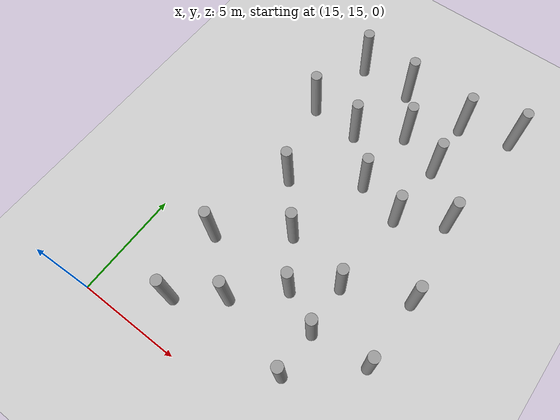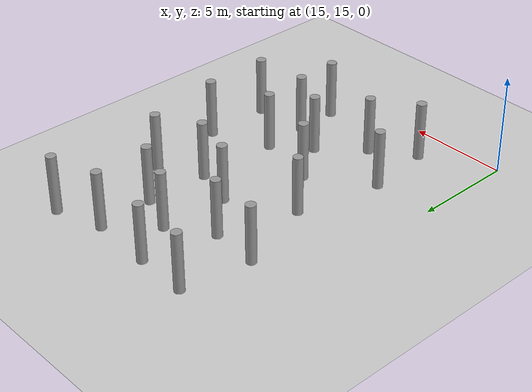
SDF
<sdf version="1.6">
 <world name="default">
  <model name="ground_plane">
   <static>1</static>
   <link name="link">
    <collision name="collision">
     <geometry><plane><normal>0 0 1</normal><size>100 100</size></plane></geometry>
     <surface><friction><ode><mu>100</mu><mu2>50</mu2></ode></friction></surface>
    </collision>
    <visual name="visual">
     <cast_shadows>0</cast_shadows>
     <geometry><plane><normal>0 0 1</normal><size>100 100</size></plane></geometry>
     <material>
      <script><uri>file://media/materials/scripts/gazebo.material</uri><name>Gazebo/Grey</name></script>
     </material>
    </visual>
   </link>
  </model>
  <model name="LjjForest_2">
   <link name="link_0_clone_0">
    <inertial>
     <mass>1</mass>
     <inertia><ixx>0.145833</ixx><ixy>0</ixy><ixz>0</ixz><iyy>0.145833</iyy><iyz>0</iyz><izz>0.125</izz></inertia>
    </inertial>
    <pose>-0.25253 2.5682 0 0 -0 0</pose>
    <visual name="visual">
     <geometry><cylinder><radius>0.25</radius><length>3</length></cylinder></geometry>
     <material>
      <lighting>1</lighting>
      <script><uri>file://media/materials/scripts/gazebo.material</uri><name>Gazebo/Grey</name></script>
      <shader type="vertex"><normal_map>__default__</normal_map></shader>
      <ambient>0.3 0.3 0.3 1</ambient>
      <diffuse>0.7 0.7 0.7 1</diffuse>
      <specular>0.01 0.01 0.01 1</specular>
      <emissive>0 0 0 1</emissive>
     </material>
    </visual>
    <collision name="collision">
     <geometry><cylinder><radius>0.25</radius><length>3</length></cylinder></geometry>
     <surface>
      <friction>
       <ode><mu>1</mu><mu2>1</mu2><fdir1>0 0 0</fdir1><slip1>0</slip1><slip2>0</slip2></ode>
       <torsional>
        <coefficient>1</coefficient>
        <patch_radius>0</patch_radius>
        <surface_radius>0</surface_radius>
        <use_patch_radius>1</use_patch_radius>
        <ode><slip>0</slip></ode>
       </torsional>
      </friction>
      <bounce><restitution_coefficient>0</restitution_coefficient><threshold>1e+06</threshold></bounce>
      <contact>
       <collide_without_contact>0</collide_without_contact>
       <collide_without_contact_bitmask>1</collide_without_contact_bitmask>
       <collide_bitmask>1</collide_bitmask>
       <ode>
        <soft_cfm>0</soft_cfm>
        <soft_erp>0.2</soft_erp>
        <kp>1e+13</kp>
        <kd>1</kd>
        <max_vel>0.01</max_vel>
        <min_depth>0</min_depth>
       </ode>
       <bullet>
        <split_impulse>1</split_impulse>
        <split_impulse_penetration_threshold>-0.01</split_impulse_penetration_threshold>
        <soft_cfm>0</soft_cfm>
        <soft_erp>0.2</soft_erp>
        <kp>1e+13</kp>
        <kd>1</kd>
       </bullet>
      </contact>
     </surface>
    </collision>
   </link>
   <link name="link_0_clone_1">
    <inertial>
     <mass>1</mass>
     <inertia><ixx>0.145833</ixx><ixy>0</ixy><ixz>0</ixz><iyy>0.145833</iyy><iyz>0</iyz><izz>0.125</izz></inertia>
    </inertial>
    <pose>-1.2394 -1.64814 0 0 -0 0</pose>
    <visual name="visual">
     <geometry><cylinder><radius>0.25</radius><length>3</length></cylinder></geometry>
     <material>
      <lighting>1</lighting>
      <script><uri>file://media/materials/scripts/gazebo.material</uri><name>Gazebo/Grey</name></script>
      <shader type="vertex"><normal_map>__default__</normal_map></shader>
      <ambient>0.3 0.3 0.3 1</ambient>
      <diffuse>0.7 0.7 0.7 1</diffuse>
      <specular>0.01 0.01 0.01 1</specular>
      <emissive>0 0 0 1</emissive>
     </material>
    </visual>
    <collision name="collision">
     <geometry><cylinder><radius>0.25</radius><length>3</length></cylinder></geometry>
     <surface>
      <friction>
       <ode><mu>1</mu><mu2>1</mu2><fdir1>0 0 0</fdir1><slip1>0</slip1><slip2>0</slip2></ode>
       <torsional>
        <coefficient>1</coefficient>
        <patch_radius>0</patch_radius>
        <surface_radius>0</surface_radius>
        <use_patch_radius>1</use_patch_radius>
        <ode><slip>0</slip></ode>
       </torsional>
      </friction>
      <bounce><restitution_coefficient>0</restitution_coefficient><threshold>1e+06</threshold></bounce>
      <contact>
       <collide_without_contact>0</collide_without_contact>
       <collide_without_contact_bitmask>1</collide_without_contact_bitmask>
       <collide_bitmask>1</collide_bitmask>
       <ode>
        <soft_cfm>0</soft_cfm>
        <soft_erp>0.2</soft_erp>
        <kp>1e+13</kp>
        <kd>1</kd>
        <max_vel>0.01</max_vel>
        <min_depth>0</min_depth>
       </ode>
       <bullet>
        <split_impulse>1</split_impulse>
        <split_impulse_penetration_threshold>-0.01</split_impulse_penetration_threshold>
        <soft_cfm>0</soft_cfm>
        <soft_erp>0.2</soft_erp>
        <kp>1e+13</kp>
        <kd>1</kd>
       </bullet>
      </contact>
     </surface>
    </collision>
   </link>
   <link name="link_0_clone_10">
    <inertial>
     <mass>1</mass>
     <inertia><ixx>0.145833</ixx><ixy>0</ixy><ixz>0</ixz><iyy>0.145833</iyy><iyz>0</iyz><izz>0.125</izz></inertia>
    </inertial>
    <pose>4.92442 -4.7051 0 0 -0 0</pose>
    <visual name="visual">
     <geometry><cylinder><radius>0.25</radius><length>3</length></cylinder></geometry>
     <material>
      <lighting>1</lighting>
      <script><uri>file://media/materials/scripts/gazebo.material</uri><name>Gazebo/Grey</name></script>
      <shader type="vertex"><normal_map>__default__</normal_map></shader>
      <ambient>0.3 0.3 0.3 1</ambient>
      <diffuse>0.7 0.7 0.7 1</diffuse>
      <specular>0.01 0.01 0.01 1</specular>
      <emissive>0 0 0 1</emissive>
     </material>
    </visual>
    <collision name="collision">
     <geometry><cylinder><radius>0.25</radius><length>3</length></cylinder></geometry>
     <surface>
      <friction>
       <ode><mu>1</mu><mu2>1</mu2><fdir1>0 0 0</fdir1><slip1>0</slip1><slip2>0</slip2></ode>
       <torsional>
        <coefficient>1</coefficient>
        <patch_radius>0</patch_radius>
        <surface_radius>0</surface_radius>
        <use_patch_radius>1</use_patch_radius>
        <ode><slip>0</slip></ode>
       </torsional>
      </friction>
      <bounce><restitution_coefficient>0</restitution_coefficient><threshold>1e+06</threshold></bounce>
      <contact>
       <collide_without_contact>0</collide_without_contact>
       <collide_without_contact_bitmask>1</collide_without_contact_bitmask>
       <collide_bitmask>1</collide_bitmask>
       <ode>
        <soft_cfm>0</soft_cfm>
        <soft_erp>0.2</soft_erp>
        <kp>1e+13</kp>
        <kd>1</kd>
        <max_vel>0.01</max_vel>
        <min_depth>0</min_depth>
       </ode>
       <bullet>
        <split_impulse>1</split_impulse>
        <split_impulse_penetration_threshold>-0.01</split_impulse_penetration_threshold>
        <soft_cfm>0</soft_cfm>
        <soft_erp>0.2</soft_erp>
        <kp>1e+13</kp>
        <kd>1</kd>
       </bullet>
      </contact>
     </surface>
    </collision>
   </link>
   <link name="link_0_clone_14">
    <inertial>
     <mass>1</mass>
     <inertia><ixx>0.145833</ixx><ixy>0</ixy><ixz>0</ixz><iyy>0.145833</iyy><iyz>0</iyz><izz>0.125</izz></inertia>
    </inertial>
    <pose>-0.840028 -4.93267 0 0 -0 0</pose>
    <visual name="visual">
     <geometry><cylinder><radius>0.25</radius><length>3</length></cylinder></geometry>
     <material>
      <lighting>1</lighting>
      <script><uri>file://media/materials/scripts/gazebo.material</uri><name>Gazebo/Grey</name></script>
      <shader type="vertex"><normal_map>__default__</normal_map></shader>
      <ambient>0.3 0.3 0.3 1</ambient>
      <diffuse>0.7 0.7 0.7 1</diffuse>
      <specular>0.01 0.01 0.01 1</specular>
      <emissive>0 0 0 1</emissive>
     </material>
    </visual>
    <collision name="collision">
     <geometry><cylinder><radius>0.25</radius><length>3</length></cylinder></geometry>
     <surface>
      <friction>
       <ode><mu>1</mu><mu2>1</mu2><fdir1>0 0 0</fdir1><slip1>0</slip1><slip2>0</slip2></ode>
       <torsional>
        <coefficient>1</coefficient>
        <patch_radius>0</patch_radius>
        <surface_radius>0</surface_radius>
        <use_patch_radius>1</use_patch_radius>
        <ode><slip>0</slip></ode>
       </torsional>
      </friction>
      <bounce><restitution_coefficient>0</restitution_coefficient><threshold>1e+06</threshold></bounce>
      <contact>
       <collide_without_contact>0</collide_without_contact>
       <collide_without_contact_bitmask>1</collide_without_contact_bitmask>
       <collide_bitmask>1</collide_bitmask>
       <ode>
        <soft_cfm>0</soft_cfm>
        <soft_erp>0.2</soft_erp>
        <kp>1e+13</kp>
        <kd>1</kd>
        <max_vel>0.01</max_vel>
        <min_depth>0</min_depth>
       </ode>
       <bullet>
        <split_impulse>1</split_impulse>
        <split_impulse_penetration_threshold>-0.01</split_impulse_penetration_threshold>
        <soft_cfm>0</soft_cfm>
        <soft_erp>0.2</soft_erp>
        <kp>1e+13</kp>
        <kd>1</kd>
       </bullet>
      </contact>
     </surface>
    </collision>
   </link>
   <link name="link_0_clone_2">
    <inertial>
     <mass>1</mass>
     <inertia><ixx>0.145833</ixx><ixy>0</ixy><ixz>0</ixz><iyy>0.145833</iyy><iyz>0</iyz><izz>0.125</izz></inertia>
    </inertial>
    <pose>1.64727 0.418921 0 0 -0 0</pose>
    <visual name="visual">
     <geometry><cylinder><radius>0.25</radius><length>3</length></cylinder></geometry>
     <material>
      <lighting>1</lighting>
      <script><uri>file://media/materials/scripts/gazebo.material</uri><name>Gazebo/Grey</name></script>
      <shader type="vertex"><normal_map>__default__</normal_map></shader>
      <ambient>0.3 0.3 0.3 1</ambient>
      <diffuse>0.7 0.7 0.7 1</diffuse>
      <specular>0.01 0.01 0.01 1</specular>
      <emissive>0 0 0 1</emissive>
     </material>
    </visual>
    <collision name="collision">
     <geometry><cylinder><radius>0.25</radius><length>3</length></cylinder></geometry>
     <surface>
      <friction>
       <ode><mu>1</mu><mu2>1</mu2><fdir1>0 0 0</fdir1><slip1>0</slip1><slip2>0</slip2></ode>
       <torsional>
        <coefficient>1</coefficient>
        <patch_radius>0</patch_radius>
        <surface_radius>0</surface_radius>
        <use_patch_radius>1</use_patch_radius>
        <ode><slip>0</slip></ode>
       </torsional>
      </friction>
      <bounce><restitution_coefficient>0</restitution_coefficient><threshold>1e+06</threshold></bounce>
      <contact>
       <collide_without_contact>0</collide_without_contact>
       <collide_without_contact_bitmask>1</collide_without_contact_bitmask>
       <collide_bitmask>1</collide_bitmask>
       <ode>
        <soft_cfm>0</soft_cfm>
        <soft_erp>0.2</soft_erp>
        <kp>1e+13</kp>
        <kd>1</kd>
        <max_vel>0.01</max_vel>
        <min_depth>0</min_depth>
       </ode>
       <bullet>
        <split_impulse>1</split_impulse>
        <split_impulse_penetration_threshold>-0.01</split_impulse_penetration_threshold>
        <soft_cfm>0</soft_cfm>
        <soft_erp>0.2</soft_erp>
        <kp>1e+13</kp>
        <kd>1</kd>
       </bullet>
      </contact>
     </surface>
    </collision>
   </link>
   <link name="link_0_clone_24">
    <inertial>
     <mass>1</mass>
     <inertia><ixx>0.145833</ixx><ixy>0</ixy><ixz>0</ixz><iyy>0.145833</iyy><iyz>0</iyz><izz>0.125</izz></inertia>
    </inertial>
    <pose>2.92874 7.75131 0 0 -0 0</pose>
    <visual name="visual">
     <geometry><cylinder><radius>0.25</radius><length>3</length></cylinder></geometry>
     <material>
      <lighting>1</lighting>
      <script><uri>file://media/materials/scripts/gazebo.material</uri><name>Gazebo/Grey</name></script>
      <shader type="vertex"><normal_map>__default__</normal_map></shader>
      <ambient>0.3 0.3 0.3 1</ambient>
      <diffuse>0.7 0.7 0.7 1</diffuse>
      <specular>0.01 0.01 0.01 1</specular>
      <emissive>0 0 0 1</emissive>
     </material>
    </visual>
    <collision name="collision">
     <geometry><cylinder><radius>0.25</radius><length>3</length></cylinder></geometry>
     <surface>
      <friction>
       <ode><mu>1</mu><mu2>1</mu2><fdir1>0 0 0</fdir1><slip1>0</slip1><slip2>0</slip2></ode>
       <torsional>
        <coefficient>1</coefficient>
        <patch_radius>0</patch_radius>
        <surface_radius>0</surface_radius>
        <use_patch_radius>1</use_patch_radius>
        <ode><slip>0</slip></ode>
       </torsional>
      </friction>
      <bounce><restitution_coefficient>0</restitution_coefficient><threshold>1e+06</threshold></bounce>
      <contact>
       <collide_without_contact>0</collide_without_contact>
       <collide_without_contact_bitmask>1</collide_without_contact_bitmask>
       <collide_bitmask>1</collide_bitmask>
       <ode>
        <soft_cfm>0</soft_cfm>
        <soft_erp>0.2</soft_erp>
        <kp>1e+13</kp>
        <kd>1</kd>
        <max_vel>0.01</max_vel>
        <min_depth>0</min_depth>
       </ode>
       <bullet>
        <split_impulse>1</split_impulse>
        <split_impulse_penetration_threshold>-0.01</split_impulse_penetration_threshold>
        <soft_cfm>0</soft_cfm>
        <soft_erp>0.2</soft_erp>
        <kp>1e+13</kp>
        <kd>1</kd>
       </bullet>
      </contact>
     </surface>
    </collision>
   </link>
   <link name="link_0_clone_25">
    <inertial>
     <mass>1</mass>
     <inertia><ixx>0.145833</ixx><ixy>0</ixy><ixz>0</ixz><iyy>0.145833</iyy><iyz>0</iyz><izz>0.125</izz></inertia>
    </inertial>
    <pose>4.82479 9.76951 0 0 -0 0</pose>
    <visual name="visual">
     <geometry><cylinder><radius>0.25</radius><length>3</length></cylinder></geometry>
     <material>
      <lighting>1</lighting>
      <script><uri>file://media/materials/scripts/gazebo.material</uri><name>Gazebo/Grey</name></script>
      <shader type="vertex"><normal_map>__default__</normal_map></shader>
      <ambient>0.3 0.3 0.3 1</ambient>
      <diffuse>0.7 0.7 0.7 1</diffuse>
      <specular>0.01 0.01 0.01 1</specular>
      <emissive>0 0 0 1</emissive>
     </material>
    </visual>
    <collision name="collision">
     <geometry><cylinder><radius>0.25</radius><length>3</length></cylinder></geometry>
     <surface>
      <friction>
       <ode><mu>1</mu><mu2>1</mu2><fdir1>0 0 0</fdir1><slip1>0</slip1><slip2>0</slip2></ode>
       <torsional>
        <coefficient>1</coefficient>
        <patch_radius>0</patch_radius>
        <surface_radius>0</surface_radius>
        <use_patch_radius>1</use_patch_radius>
        <ode><slip>0</slip></ode>
       </torsional>
      </friction>
      <bounce><restitution_coefficient>0</restitution_coefficient><threshold>1e+06</threshold></bounce>
      <contact>
       <collide_without_contact>0</collide_without_contact>
       <collide_without_contact_bitmask>1</collide_without_contact_bitmask>
       <collide_bitmask>1</collide_bitmask>
       <ode>
        <soft_cfm>0</soft_cfm>
        <soft_erp>0.2</soft_erp>
        <kp>1e+13</kp>
        <kd>1</kd>
        <max_vel>0.01</max_vel>
        <min_depth>0</min_depth>
       </ode>
       <bullet>
        <split_impulse>1</split_impulse>
        <split_impulse_penetration_threshold>-0.01</split_impulse_penetration_threshold>
        <soft_cfm>0</soft_cfm>
        <soft_erp>0.2</soft_erp>
        <kp>1e+13</kp>
        <kd>1</kd>
       </bullet>
      </contact>
     </surface>
    </collision>
   </link>
   <link name="link_0_clone_26">
    <inertial>
     <mass>1</mass>
     <inertia><ixx>0.145833</ixx><ixy>0</ixy><ixz>0</ixz><iyy>0.145833</iyy><iyz>0</iyz><izz>0.125</izz></inertia>
    </inertial>
    <pose>1.66794 9.91533 0 0 -0 0</pose>
    <visual name="visual">
     <geometry><cylinder><radius>0.25</radius><length>3</length></cylinder></geometry>
     <material>
      <lighting>1</lighting>
      <script><uri>file://media/materials/scripts/gazebo.material</uri><name>Gazebo/Grey</name></script>
      <shader type="vertex"><normal_map>__default__</normal_map></shader>
      <ambient>0.3 0.3 0.3 1</ambient>
      <diffuse>0.7 0.7 0.7 1</diffuse>
      <specular>0.01 0.01 0.01 1</specular>
      <emissive>0 0 0 1</emissive>
     </material>
    </visual>
    <collision name="collision">
     <geometry><cylinder><radius>0.25</radius><length>3</length></cylinder></geometry>
     <surface>
      <friction>
       <ode><mu>1</mu><mu2>1</mu2><fdir1>0 0 0</fdir1><slip1>0</slip1><slip2>0</slip2></ode>
       <torsional>
        <coefficient>1</coefficient>
        <patch_radius>0</patch_radius>
        <surface_radius>0</surface_radius>
        <use_patch_radius>1</use_patch_radius>
        <ode><slip>0</slip></ode>
       </torsional>
      </friction>
      <bounce><restitution_coefficient>0</restitution_coefficient><threshold>1e+06</threshold></bounce>
      <contact>
       <collide_without_contact>0</collide_without_contact>
       <collide_without_contact_bitmask>1</collide_without_contact_bitmask>
       <collide_bitmask>1</collide_bitmask>
       <ode>
        <soft_cfm>0</soft_cfm>
        <soft_erp>0.2</soft_erp>
        <kp>1e+13</kp>
        <kd>1</kd>
        <max_vel>0.01</max_vel>
        <min_depth>0</min_depth>
       </ode>
       <bullet>
        <split_impulse>1</split_impulse>
        <split_impulse_penetration_threshold>-0.01</split_impulse_penetration_threshold>
        <soft_cfm>0</soft_cfm>
        <soft_erp>0.2</soft_erp>
        <kp>1e+13</kp>
        <kd>1</kd>
       </bullet>
      </contact>
     </surface>
    </collision>
   </link>
   <link name="link_0_clone_27">
    <inertial>
     <mass>1</mass>
     <inertia><ixx>0.145833</ixx><ixy>0</ixy><ixz>0</ixz><iyy>0.145833</iyy><iyz>0</iyz><izz>0.125</izz></inertia>
    </inertial>
    <pose>-0.975859 10.0087 0 0 -0 0</pose>
    <visual name="visual">
     <geometry><cylinder><radius>0.25</radius><length>3</length></cylinder></geometry>
     <material>
      <lighting>1</lighting>
      <script><uri>file://media/materials/scripts/gazebo.material</uri><name>Gazebo/Grey</name></script>
      <shader type="vertex"><normal_map>__default__</normal_map></shader>
      <ambient>0.3 0.3 0.3 1</ambient>
      <diffuse>0.7 0.7 0.7 1</diffuse>
      <specular>0.01 0.01 0.01 1</specular>
      <emissive>0 0 0 1</emissive>
     </material>
    </visual>
    <collision name="collision">
     <geometry><cylinder><radius>0.25</radius><length>3</length></cylinder></geometry>
     <surface>
      <friction>
       <ode><mu>1</mu><mu2>1</mu2><fdir1>0 0 0</fdir1><slip1>0</slip1><slip2>0</slip2></ode>
       <torsional>
        <coefficient>1</coefficient>
        <patch_radius>0</patch_radius>
        <surface_radius>0</surface_radius>
        <use_patch_radius>1</use_patch_radius>
        <ode><slip>0</slip></ode>
       </torsional>
      </friction>
      <bounce><restitution_coefficient>0</restitution_coefficient><threshold>1e+06</threshold></bounce>
      <contact>
       <collide_without_contact>0</collide_without_contact>
       <collide_without_contact_bitmask>1</collide_without_contact_bitmask>
       <collide_bitmask>1</collide_bitmask>
       <ode>
        <soft_cfm>0</soft_cfm>
        <soft_erp>0.2</soft_erp>
        <kp>1e+13</kp>
        <kd>1</kd>
        <max_vel>0.01</max_vel>
        <min_depth>0</min_depth>
       </ode>
       <bullet>
        <split_impulse>1</split_impulse>
        <split_impulse_penetration_threshold>-0.01</split_impulse_penetration_threshold>
        <soft_cfm>0</soft_cfm>
        <soft_erp>0.2</soft_erp>
        <kp>1e+13</kp>
        <kd>1</kd>
       </bullet>
      </contact>
     </surface>
    </collision>
   </link>
   <link name="link_0_clone_3">
    <inertial>
     <mass>1</mass>
     <inertia><ixx>0.145833</ixx><ixy>0</ixy><ixz>0</ixz><iyy>0.145833</iyy><iyz>0</iyz><izz>0.125</izz></inertia>
    </inertial>
    <pose>2.76214 4.38882 0 0 -0 0</pose>
    <visual name="visual">
     <geometry><cylinder><radius>0.25</radius><length>3</length></cylinder></geometry>
     <material>
      <lighting>1</lighting>
      <script><uri>file://media/materials/scripts/gazebo.material</uri><name>Gazebo/Grey</name></script>
      <shader type="vertex"><normal_map>__default__</normal_map></shader>
      <ambient>0.3 0.3 0.3 1</ambient>
      <diffuse>0.7 0.7 0.7 1</diffuse>
      <specular>0.01 0.01 0.01 1</specular>
      <emissive>0 0 0 1</emissive>
     </material>
    </visual>
    <collision name="collision">
     <geometry><cylinder><radius>0.25</radius><length>3</length></cylinder></geometry>
     <surface>
      <friction>
       <ode><mu>1</mu><mu2>1</mu2><fdir1>0 0 0</fdir1><slip1>0</slip1><slip2>0</slip2></ode>
       <torsional>
        <coefficient>1</coefficient>
        <patch_radius>0</patch_radius>
        <surface_radius>0</surface_radius>
        <use_patch_radius>1</use_patch_radius>
        <ode><slip>0</slip></ode>
       </torsional>
      </friction>
      <bounce><restitution_coefficient>0</restitution_coefficient><threshold>1e+06</threshold></bounce>
      <contact>
       <collide_without_contact>0</collide_without_contact>
       <collide_without_contact_bitmask>1</collide_without_contact_bitmask>
       <collide_bitmask>1</collide_bitmask>
       <ode>
        <soft_cfm>0</soft_cfm>
        <soft_erp>0.2</soft_erp>
        <kp>1e+13</kp>
        <kd>1</kd>
        <max_vel>0.01</max_vel>
        <min_depth>0</min_depth>
       </ode>
       <bullet>
        <split_impulse>1</split_impulse>
        <split_impulse_penetration_threshold>-0.01</split_impulse_penetration_threshold>
        <soft_cfm>0</soft_cfm>
        <soft_erp>0.2</soft_erp>
        <kp>1e+13</kp>
        <kd>1</kd>
       </bullet>
      </contact>
     </surface>
    </collision>
   </link>
   <link name="link_0_clone_30">
    <inertial>
     <mass>1</mass>
     <inertia><ixx>0.145833</ixx><ixy>0</ixy><ixz>0</ixz><iyy>0.145833</iyy><iyz>0</iyz><izz>0.125</izz></inertia>
    </inertial>
    <pose>4.96935 6.93626 0 0 -0 0</pose>
    <visual name="visual">
     <geometry><cylinder><radius>0.25</radius><length>3</length></cylinder></geometry>
     <material>
      <lighting>1</lighting>
      <script><uri>file://media/materials/scripts/gazebo.material</uri><name>Gazebo/Grey</name></script>
      <shader type="vertex"><normal_map>__default__</normal_map></shader>
      <ambient>0.3 0.3 0.3 1</ambient>
      <diffuse>0.7 0.7 0.7 1</diffuse>
      <specular>0.01 0.01 0.01 1</specular>
      <emissive>0 0 0 1</emissive>
     </material>
    </visual>
    <collision name="collision">
     <geometry><cylinder><radius>0.25</radius><length>3</length></cylinder></geometry>
     <surface>
      <friction>
       <ode><mu>1</mu><mu2>1</mu2><fdir1>0 0 0</fdir1><slip1>0</slip1><slip2>0</slip2></ode>
       <torsional>
        <coefficient>1</coefficient>
        <patch_radius>0</patch_radius>
        <surface_radius>0</surface_radius>
        <use_patch_radius>1</use_patch_radius>
        <ode><slip>0</slip></ode>
       </torsional>
      </friction>
      <bounce><restitution_coefficient>0</restitution_coefficient><threshold>1e+06</threshold></bounce>
      <contact>
       <collide_without_contact>0</collide_without_contact>
       <collide_without_contact_bitmask>1</collide_without_contact_bitmask>
       <collide_bitmask>1</collide_bitmask>
       <ode>
        <soft_cfm>0</soft_cfm>
        <soft_erp>0.2</soft_erp>
        <kp>1e+13</kp>
        <kd>1</kd>
        <max_vel>0.01</max_vel>
        <min_depth>0</min_depth>
       </ode>
       <bullet>
        <split_impulse>1</split_impulse>
        <split_impulse_penetration_threshold>-0.01</split_impulse_penetration_threshold>
        <soft_cfm>0</soft_cfm>
        <soft_erp>0.2</soft_erp>
        <kp>1e+13</kp>
        <kd>1</kd>
       </bullet>
      </contact>
     </surface>
    </collision>
   </link>
   <link name="link_0_clone_31">
    <inertial>
     <mass>1</mass>
     <inertia><ixx>0.145833</ixx><ixy>0</ixy><ixz>0</ixz><iyy>0.145833</iyy><iyz>0</iyz><izz>0.125</izz></inertia>
    </inertial>
    <pose>4.87388 3.77106 0 0 -0 0</pose>
    <visual name="visual">
     <geometry><cylinder><radius>0.25</radius><length>3</length></cylinder></geometry>
     <material>
      <lighting>1</lighting>
      <script><uri>file://media/materials/scripts/gazebo.material</uri><name>Gazebo/Grey</name></script>
      <shader type="vertex"><normal_map>__default__</normal_map></shader>
      <ambient>0.3 0.3 0.3 1</ambient>
      <diffuse>0.7 0.7 0.7 1</diffuse>
      <specular>0.01 0.01 0.01 1</specular>
      <emissive>0 0 0 1</emissive>
     </material>
    </visual>
    <collision name="collision">
     <geometry><cylinder><radius>0.25</radius><length>3</length></cylinder></geometry>
     <surface>
      <friction>
       <ode><mu>1</mu><mu2>1</mu2><fdir1>0 0 0</fdir1><slip1>0</slip1><slip2>0</slip2></ode>
       <torsional>
        <coefficient>1</coefficient>
        <patch_radius>0</patch_radius>
        <surface_radius>0</surface_radius>
        <use_patch_radius>1</use_patch_radius>
        <ode><slip>0</slip></ode>
       </torsional>
      </friction>
      <bounce><restitution_coefficient>0</restitution_coefficient><threshold>1e+06</threshold></bounce>
      <contact>
       <collide_without_contact>0</collide_without_contact>
       <collide_without_contact_bitmask>1</collide_without_contact_bitmask>
       <collide_bitmask>1</collide_bitmask>
       <ode>
        <soft_cfm>0</soft_cfm>
        <soft_erp>0.2</soft_erp>
        <kp>1e+13</kp>
        <kd>1</kd>
        <max_vel>0.01</max_vel>
        <min_depth>0</min_depth>
       </ode>
       <bullet>
        <split_impulse>1</split_impulse>
        <split_impulse_penetration_threshold>-0.01</split_impulse_penetration_threshold>
        <soft_cfm>0</soft_cfm>
        <soft_erp>0.2</soft_erp>
        <kp>1e+13</kp>
        <kd>1</kd>
       </bullet>
      </contact>
     </surface>
    </collision>
   </link>
   <link name="link_0_clone_32">
    <inertial>
     <mass>1</mass>
     <inertia><ixx>0.145833</ixx><ixy>0</ixy><ixz>0</ixz><iyy>0.145833</iyy><iyz>0</iyz><izz>0.125</izz></inertia>
    </inertial>
    <pose>3.04344 -1.68403 0 0 -0 0</pose>
    <visual name="visual">
     <geometry><cylinder><radius>0.25</radius><length>3</length></cylinder></geometry>
     <material>
      <lighting>1</lighting>
      <script><uri>file://media/materials/scripts/gazebo.material</uri><name>Gazebo/Grey</name></script>
      <shader type="vertex"><normal_map>__default__</normal_map></shader>
      <ambient>0.3 0.3 0.3 1</ambient>
      <diffuse>0.7 0.7 0.7 1</diffuse>
      <specular>0.01 0.01 0.01 1</specular>
      <emissive>0 0 0 1</emissive>
     </material>
    </visual>
    <collision name="collision">
     <geometry><cylinder><radius>0.25</radius><length>3</length></cylinder></geometry>
     <surface>
      <friction>
       <ode><mu>1</mu><mu2>1</mu2><fdir1>0 0 0</fdir1><slip1>0</slip1><slip2>0</slip2></ode>
       <torsional>
        <coefficient>1</coefficient>
        <patch_radius>0</patch_radius>
        <surface_radius>0</surface_radius>
        <use_patch_radius>1</use_patch_radius>
        <ode><slip>0</slip></ode>
       </torsional>
      </friction>
      <bounce><restitution_coefficient>0</restitution_coefficient><threshold>1e+06</threshold></bounce>
      <contact>
       <collide_without_contact>0</collide_without_contact>
       <collide_without_contact_bitmask>1</collide_without_contact_bitmask>
       <collide_bitmask>1</collide_bitmask>
       <ode>
        <soft_cfm>0</soft_cfm>
        <soft_erp>0.2</soft_erp>
        <kp>1e+13</kp>
        <kd>1</kd>
        <max_vel>0.01</max_vel>
        <min_depth>0</min_depth>
       </ode>
       <bullet>
        <split_impulse>1</split_impulse>
        <split_impulse_penetration_threshold>-0.01</split_impulse_penetration_threshold>
        <soft_cfm>0</soft_cfm>
        <soft_erp>0.2</soft_erp>
        <kp>1e+13</kp>
        <kd>1</kd>
       </bullet>
      </contact>
     </surface>
    </collision>
   </link>
   <link name="link_0_clone_4">
    <inertial>
     <mass>1</mass>
     <inertia><ixx>0.145833</ixx><ixy>0</ixy><ixz>0</ixz><iyy>0.145833</iyy><iyz>0</iyz><izz>0.125</izz></inertia>
    </inertial>
    <pose>0.858928 6.3824 0 0 -0 0</pose>
    <visual name="visual">
     <geometry><cylinder><radius>0.25</radius><length>3</length></cylinder></geometry>
     <material>
      <lighting>1</lighting>
      <script><uri>file://media/materials/scripts/gazebo.material</uri><name>Gazebo/Grey</name></script>
      <shader type="vertex"><normal_map>__default__</normal_map></shader>
      <ambient>0.3 0.3 0.3 1</ambient>
      <diffuse>0.7 0.7 0.7 1</diffuse>
      <specular>0.01 0.01 0.01 1</specular>
      <emissive>0 0 0 1</emissive>
     </material>
    </visual>
    <collision name="collision">
     <geometry><cylinder><radius>0.25</radius><length>3</length></cylinder></geometry>
     <surface>
      <friction>
       <ode><mu>1</mu><mu2>1</mu2><fdir1>0 0 0</fdir1><slip1>0</slip1><slip2>0</slip2></ode>
       <torsional>
        <coefficient>1</coefficient>
        <patch_radius>0</patch_radius>
        <surface_radius>0</surface_radius>
        <use_patch_radius>1</use_patch_radius>
        <ode><slip>0</slip></ode>
       </torsional>
      </friction>
      <bounce><restitution_coefficient>0</restitution_coefficient><threshold>1e+06</threshold></bounce>
      <contact>
       <collide_without_contact>0</collide_without_contact>
       <collide_without_contact_bitmask>1</collide_without_contact_bitmask>
       <collide_bitmask>1</collide_bitmask>
       <ode>
        <soft_cfm>0</soft_cfm>
        <soft_erp>0.2</soft_erp>
        <kp>1e+13</kp>
        <kd>1</kd>
        <max_vel>0.01</max_vel>
        <min_depth>0</min_depth>
       </ode>
       <bullet>
        <split_impulse>1</split_impulse>
        <split_impulse_penetration_threshold>-0.01</split_impulse_penetration_threshold>
        <soft_cfm>0</soft_cfm>
        <soft_erp>0.2</soft_erp>
        <kp>1e+13</kp>
        <kd>1</kd>
       </bullet>
      </contact>
     </surface>
    </collision>
   </link>
   <link name="link_0_clone_5">
    <inertial>
     <mass>1</mass>
     <inertia><ixx>0.145833</ixx><ixy>0</ixy><ixz>0</ixz><iyy>0.145833</iyy><iyz>0</iyz><izz>0.125</izz></inertia>
    </inertial>
    <pose>-1.56065 6.53618 0 0 -0 0</pose>
    <visual name="visual">
     <geometry><cylinder><radius>0.25</radius><length>3</length></cylinder></geometry>
     <material>
      <lighting>1</lighting>
      <script><uri>file://media/materials/scripts/gazebo.material</uri><name>Gazebo/Grey</name></script>
      <shader type="vertex"><normal_map>__default__</normal_map></shader>
      <ambient>0.3 0.3 0.3 1</ambient>
      <diffuse>0.7 0.7 0.7 1</diffuse>
      <specular>0.01 0.01 0.01 1</specular>
      <emissive>0 0 0 1</emissive>
     </material>
    </visual>
    <collision name="collision">
     <geometry><cylinder><radius>0.25</radius><length>3</length></cylinder></geometry>
     <surface>
      <friction>
       <ode><mu>1</mu><mu2>1</mu2><fdir1>0 0 0</fdir1><slip1>0</slip1><slip2>0</slip2></ode>
       <torsional>
        <coefficient>1</coefficient>
        <patch_radius>0</patch_radius>
        <surface_radius>0</surface_radius>
        <use_patch_radius>1</use_patch_radius>
        <ode><slip>0</slip></ode>
       </torsional>
      </friction>
      <bounce><restitution_coefficient>0</restitution_coefficient><threshold>1e+06</threshold></bounce>
      <contact>
       <collide_without_contact>0</collide_without_contact>
       <collide_without_contact_bitmask>1</collide_without_contact_bitmask>
       <collide_bitmask>1</collide_bitmask>
       <ode>
        <soft_cfm>0</soft_cfm>
        <soft_erp>0.2</soft_erp>
        <kp>1e+13</kp>
        <kd>1</kd>
        <max_vel>0.01</max_vel>
        <min_depth>0</min_depth>
       </ode>
       <bullet>
        <split_impulse>1</split_impulse>
        <split_impulse_penetration_threshold>-0.01</split_impulse_penetration_threshold>
        <soft_cfm>0</soft_cfm>
        <soft_erp>0.2</soft_erp>
        <kp>1e+13</kp>
        <kd>1</kd>
       </bullet>
      </contact>
     </surface>
    </collision>
   </link>
   <link name="link_0_clone_7">
    <inertial>
     <mass>1</mass>
     <inertia><ixx>0.145833</ixx><ixy>0</ixy><ixz>0</ixz><iyy>0.145833</iyy><iyz>0</iyz><izz>0.125</izz></inertia>
    </inertial>
    <pose>1.14853 -3.52752 0 0 -0 0</pose>
    <visual name="visual">
     <geometry><cylinder><radius>0.25</radius><length>3</length></cylinder></geometry>
     <material>
      <lighting>1</lighting>
      <script><uri>file://media/materials/scripts/gazebo.material</uri><name>Gazebo/Grey</name></script>
      <shader type="vertex"><normal_map>__default__</normal_map></shader>
      <ambient>0.3 0.3 0.3 1</ambient>
      <diffuse>0.7 0.7 0.7 1</diffuse>
      <specular>0.01 0.01 0.01 1</specular>
      <emissive>0 0 0 1</emissive>
     </material>
    </visual>
    <collision name="collision">
     <geometry><cylinder><radius>0.25</radius><length>3</length></cylinder></geometry>
     <surface>
      <friction>
       <ode><mu>1</mu><mu2>1</mu2><fdir1>0 0 0</fdir1><slip1>0</slip1><slip2>0</slip2></ode>
       <torsional>
        <coefficient>1</coefficient>
        <patch_radius>0</patch_radius>
        <surface_radius>0</surface_radius>
        <use_patch_radius>1</use_patch_radius>
        <ode><slip>0</slip></ode>
       </torsional>
      </friction>
      <bounce><restitution_coefficient>0</restitution_coefficient><threshold>1e+06</threshold></bounce>
      <contact>
       <collide_without_contact>0</collide_without_contact>
       <collide_without_contact_bitmask>1</collide_without_contact_bitmask>
       <collide_bitmask>1</collide_bitmask>
       <ode>
        <soft_cfm>0</soft_cfm>
        <soft_erp>0.2</soft_erp>
        <kp>1e+13</kp>
        <kd>1</kd>
        <max_vel>0.01</max_vel>
        <min_depth>0</min_depth>
       </ode>
       <bullet>
        <split_impulse>1</split_impulse>
        <split_impulse_penetration_threshold>-0.01</split_impulse_penetration_threshold>
        <soft_cfm>0</soft_cfm>
        <soft_erp>0.2</soft_erp>
        <kp>1e+13</kp>
        <kd>1</kd>
       </bullet>
      </contact>
     </surface>
    </collision>
   </link>
   <link name="link_0_clone_8">
    <inertial>
     <mass>1</mass>
     <inertia><ixx>0.145833</ixx><ixy>0</ixy><ixz>0</ixz><iyy>0.145833</iyy><iyz>0</iyz><izz>0.125</izz></inertia>
    </inertial>
    <pose>4.72743 -0.273206 0 0 -0 0</pose>
    <visual name="visual">
     <geometry><cylinder><radius>0.25</radius><length>3</length></cylinder></geometry>
     <material>
      <lighting>1</lighting>
      <script><uri>file://media/materials/scripts/gazebo.material</uri><name>Gazebo/Grey</name></script>
      <shader type="vertex"><normal_map>__default__</normal_map></shader>
      <ambient>0.3 0.3 0.3 1</ambient>
      <diffuse>0.7 0.7 0.7 1</diffuse>
      <specular>0.01 0.01 0.01 1</specular>
      <emissive>0 0 0 1</emissive>
     </material>
    </visual>
    <collision name="collision">
     <geometry><cylinder><radius>0.25</radius><length>3</length></cylinder></geometry>
     <surface>
      <friction>
       <ode><mu>1</mu><mu2>1</mu2><fdir1>0 0 0</fdir1><slip1>0</slip1><slip2>0</slip2></ode>
       <torsional>
        <coefficient>1</coefficient>
        <patch_radius>0</patch_radius>
        <surface_radius>0</surface_radius>
        <use_patch_radius>1</use_patch_radius>
        <ode><slip>0</slip></ode>
       </torsional>
      </friction>
      <bounce><restitution_coefficient>0</restitution_coefficient><threshold>1e+06</threshold></bounce>
      <contact>
       <collide_without_contact>0</collide_without_contact>
       <collide_without_contact_bitmask>1</collide_without_contact_bitmask>
       <collide_bitmask>1</collide_bitmask>
       <ode>
        <soft_cfm>0</soft_cfm>
        <soft_erp>0.2</soft_erp>
        <kp>1e+13</kp>
        <kd>1</kd>
        <max_vel>0.01</max_vel>
        <min_depth>0</min_depth>
       </ode>
       <bullet>
        <split_impulse>1</split_impulse>
        <split_impulse_penetration_threshold>-0.01</split_impulse_penetration_threshold>
        <soft_cfm>0</soft_cfm>
        <soft_erp>0.2</soft_erp>
        <kp>1e+13</kp>
        <kd>1</kd>
       </bullet>
      </contact>
     </surface>
    </collision>
   </link>
   <link name="link_0_clone_9">
    <inertial>
     <mass>1</mass>
     <inertia><ixx>0.145833</ixx><ixy>0</ixy><ixz>0</ixz><iyy>0.145833</iyy><iyz>0</iyz><izz>0.125</izz></inertia>
    </inertial>
    <pose>4.89769 -2.58143 0 0 -0 0</pose>
    <visual name="visual">
     <geometry><cylinder><radius>0.25</radius><length>3</length></cylinder></geometry>
     <material>
      <lighting>1</lighting>
      <script><uri>file://media/materials/scripts/gazebo.material</uri><name>Gazebo/Grey</name></script>
      <shader type="vertex"><normal_map>__default__</normal_map></shader>
      <ambient>0.3 0.3 0.3 1</ambient>
      <diffuse>0.7 0.7 0.7 1</diffuse>
      <specular>0.01 0.01 0.01 1</specular>
      <emissive>0 0 0 1</emissive>
     </material>
    </visual>
    <collision name="collision">
     <geometry><cylinder><radius>0.25</radius><length>3</length></cylinder></geometry>
     <surface>
      <friction>
       <ode><mu>1</mu><mu2>1</mu2><fdir1>0 0 0</fdir1><slip1>0</slip1><slip2>0</slip2></ode>
       <torsional>
        <coefficient>1</coefficient>
        <patch_radius>0</patch_radius>
        <surface_radius>0</surface_radius>
        <use_patch_radius>1</use_patch_radius>
        <ode><slip>0</slip></ode>
       </torsional>
      </friction>
      <bounce><restitution_coefficient>0</restitution_coefficient><threshold>1e+06</threshold></bounce>
      <contact>
       <collide_without_contact>0</collide_without_contact>
       <collide_without_contact_bitmask>1</collide_without_contact_bitmask>
       <collide_bitmask>1</collide_bitmask>
       <ode>
        <soft_cfm>0</soft_cfm>
        <soft_erp>0.2</soft_erp>
        <kp>1e+13</kp>
        <kd>1</kd>
        <max_vel>0.01</max_vel>
        <min_depth>0</min_depth>
       </ode>
       <bullet>
        <split_impulse>1</split_impulse>
        <split_impulse_penetration_threshold>-0.01</split_impulse_penetration_threshold>
        <soft_cfm>0</soft_cfm>
        <soft_erp>0.2</soft_erp>
        <kp>1e+13</kp>
        <kd>1</kd>
       </bullet>
      </contact>
     </surface>
    </collision>
   </link>
   <static>0</static>
   <pose>19.2308 21.7727 1.49999 0 -0 0.002262</pose>
  </model>
  <model name="LjjForest_5">
   <link name="link_0">
    <inertial>
     <mass>1</mass>
     <inertia><ixx>0.145833</ixx><ixy>0</ixy><ixz>0</ixz><iyy>0.145833</iyy><iyz>0</iyz><izz>0.125</izz></inertia>
    </inertial>
    <pose>-5.02717 0.116957 0 0 -0 0</pose>
    <visual name="visual">
     <geometry><cylinder><radius>0.25</radius><length>3</length></cylinder></geometry>
     <material>
      <lighting>1</lighting>
      <script><uri>file://media/materials/scripts/gazebo.material</uri><name>Gazebo/Grey</name></script>
      <shader type="vertex"><normal_map>__default__</normal_map></shader>
      <ambient>0.3 0.3 0.3 1</ambient>
      <diffuse>0.7 0.7 0.7 1</diffuse>
      <specular>0.01 0.01 0.01 1</specular>
      <emissive>0 0 0 1</emissive>
     </material>
    </visual>
    <collision name="collision">
     <geometry><cylinder><radius>0.25</radius><length>3</length></cylinder></geometry>
     <surface>
      <friction>
       <ode><mu>1</mu><mu2>1</mu2><fdir1>0 0 0</fdir1><slip1>0</slip1><slip2>0</slip2></ode>
       <torsional>
        <coefficient>1</coefficient>
        <patch_radius>0</patch_radius>
        <surface_radius>0</surface_radius>
        <use_patch_radius>1</use_patch_radius>
        <ode><slip>0</slip></ode>
       </torsional>
      </friction>
      <bounce><restitution_coefficient>0</restitution_coefficient><threshold>1e+06</threshold></bounce>
      <contact>
       <collide_without_contact>0</collide_without_contact>
       <collide_without_contact_bitmask>1</collide_without_contact_bitmask>
       <collide_bitmask>1</collide_bitmask>
       <ode>
        <soft_cfm>0</soft_cfm>
        <soft_erp>0.2</soft_erp>
        <kp>1e+13</kp>
        <kd>1</kd>
        <max_vel>0.01</max_vel>
        <min_depth>0</min_depth>
       </ode>
       <bullet>
        <split_impulse>1</split_impulse>
        <split_impulse_penetration_threshold>-0.01</split_impulse_penetration_threshold>
        <soft_cfm>0</soft_cfm>
        <soft_erp>0.2</soft_erp>
        <kp>1e+13</kp>
        <kd>1</kd>
       </bullet>
      </contact>
     </surface>
    </collision>
   </link>
   <link name="link_0_clone_16">
    <inertial>
     <mass>1</mass>
     <inertia><ixx>0.145833</ixx><ixy>0</ixy><ixz>0</ixz><iyy>0.145833</iyy><iyz>0</iyz><izz>0.125</izz></inertia>
    </inertial>
    <pose>-5.04025 -3.1815 0 0 -0 0</pose>
    <visual name="visual">
     <geometry><cylinder><radius>0.25</radius><length>3</length></cylinder></geometry>
     <material>
      <lighting>1</lighting>
      <script><uri>file://media/materials/scripts/gazebo.material</uri><name>Gazebo/Grey</name></script>
      <shader type="vertex"><normal_map>__default__</normal_map></shader>
      <ambient>0.3 0.3 0.3 1</ambient>
      <diffuse>0.7 0.7 0.7 1</diffuse>
      <specular>0.01 0.01 0.01 1</specular>
      <emissive>0 0 0 1</emissive>
     </material>
    </visual>
    <collision name="collision">
     <geometry><cylinder><radius>0.25</radius><length>3</length></cylinder></geometry>
     <surface>
      <friction>
       <ode><mu>1</mu><mu2>1</mu2><fdir1>0 0 0</fdir1><slip1>0</slip1><slip2>0</slip2></ode>
       <torsional>
        <coefficient>1</coefficient>
        <patch_radius>0</patch_radius>
        <surface_radius>0</surface_radius>
        <use_patch_radius>1</use_patch_radius>
        <ode><slip>0</slip></ode>
       </torsional>
      </friction>
      <bounce><restitution_coefficient>0</restitution_coefficient><threshold>1e+06</threshold></bounce>
      <contact>
       <collide_without_contact>0</collide_without_contact>
       <collide_without_contact_bitmask>1</collide_without_contact_bitmask>
       <collide_bitmask>1</collide_bitmask>
       <ode>
        <soft_cfm>0</soft_cfm>
        <soft_erp>0.2</soft_erp>
        <kp>1e+13</kp>
        <kd>1</kd>
        <max_vel>0.01</max_vel>
        <min_depth>0</min_depth>
       </ode>
       <bullet>
        <split_impulse>1</split_impulse>
        <split_impulse_penetration_threshold>-0.01</split_impulse_penetration_threshold>
        <soft_cfm>0</soft_cfm>
        <soft_erp>0.2</soft_erp>
        <kp>1e+13</kp>
        <kd>1</kd>
       </bullet>
      </contact>
     </surface>
    </collision>
   </link>
   <link name="link_0_clone_23">
    <inertial>
     <mass>1</mass>
     <inertia><ixx>0.145833</ixx><ixy>0</ixy><ixz>0</ixz><iyy>0.145833</iyy><iyz>0</iyz><izz>0.125</izz></inertia>
    </inertial>
    <pose>-5.66615 4.05911 0 0 -0 0</pose>
    <visual name="visual">
     <geometry><cylinder><radius>0.25</radius><length>3</length></cylinder></geometry>
     <material>
      <lighting>1</lighting>
      <script><uri>file://media/materials/scripts/gazebo.material</uri><name>Gazebo/Grey</name></script>
      <shader type="vertex"><normal_map>__default__</normal_map></shader>
      <ambient>0.3 0.3 0.3 1</ambient>
      <diffuse>0.7 0.7 0.7 1</diffuse>
      <specular>0.01 0.01 0.01 1</specular>
      <emissive>0 0 0 1</emissive>
     </material>
    </visual>
    <collision name="collision">
     <geometry><cylinder><radius>0.25</radius><length>3</length></cylinder></geometry>
     <surface>
      <friction>
       <ode><mu>1</mu><mu2>1</mu2><fdir1>0 0 0</fdir1><slip1>0</slip1><slip2>0</slip2></ode>
       <torsional>
        <coefficient>1</coefficient>
        <patch_radius>0</patch_radius>
        <surface_radius>0</surface_radius>
        <use_patch_radius>1</use_patch_radius>
        <ode><slip>0</slip></ode>
       </torsional>
      </friction>
      <bounce><restitution_coefficient>0</restitution_coefficient><threshold>1e+06</threshold></bounce>
      <contact>
       <collide_without_contact>0</collide_without_contact>
       <collide_without_contact_bitmask>1</collide_without_contact_bitmask>
       <collide_bitmask>1</collide_bitmask>
       <ode>
        <soft_cfm>0</soft_cfm>
        <soft_erp>0.2</soft_erp>
        <kp>1e+13</kp>
        <kd>1</kd>
        <max_vel>0.01</max_vel>
        <min_depth>0</min_depth>
       </ode>
       <bullet>
        <split_impulse>1</split_impulse>
        <split_impulse_penetration_threshold>-0.01</split_impulse_penetration_threshold>
        <soft_cfm>0</soft_cfm>
        <soft_erp>0.2</soft_erp>
        <kp>1e+13</kp>
        <kd>1</kd>
       </bullet>
      </contact>
     </surface>
    </collision>
   </link>
   <link name="link_0_clone_29">
    <inertial>
     <mass>1</mass>
     <inertia><ixx>0.145833</ixx><ixy>0</ixy><ixz>0</ixz><iyy>0.145833</iyy><iyz>0</iyz><izz>0.125</izz></inertia>
    </inertial>
    <pose>-5.38645 9.63545 0 0 -0 0</pose>
    <visual name="visual">
     <geometry><cylinder><radius>0.25</radius><length>3</length></cylinder></geometry>
     <material>
      <lighting>1</lighting>
      <script><uri>file://media/materials/scripts/gazebo.material</uri><name>Gazebo/Grey</name></script>
      <shader type="vertex"><normal_map>__default__</normal_map></shader>
      <ambient>0.3 0.3 0.3 1</ambient>
      <diffuse>0.7 0.7 0.7 1</diffuse>
      <specular>0.01 0.01 0.01 1</specular>
      <emissive>0 0 0 1</emissive>
     </material>
    </visual>
    <collision name="collision">
     <geometry><cylinder><radius>0.25</radius><length>3</length></cylinder></geometry>
     <surface>
      <friction>
       <ode><mu>1</mu><mu2>1</mu2><fdir1>0 0 0</fdir1><slip1>0</slip1><slip2>0</slip2></ode>
       <torsional>
        <coefficient>1</coefficient>
        <patch_radius>0</patch_radius>
        <surface_radius>0</surface_radius>
        <use_patch_radius>1</use_patch_radius>
        <ode><slip>0</slip></ode>
       </torsional>
      </friction>
      <bounce><restitution_coefficient>0</restitution_coefficient><threshold>1e+06</threshold></bounce>
      <contact>
       <collide_without_contact>0</collide_without_contact>
       <collide_without_contact_bitmask>1</collide_without_contact_bitmask>
       <collide_bitmask>1</collide_bitmask>
       <ode>
        <soft_cfm>0</soft_cfm>
        <soft_erp>0.2</soft_erp>
        <kp>1e+13</kp>
        <kd>1</kd>
        <max_vel>0.01</max_vel>
        <min_depth>0</min_depth>
       </ode>
       <bullet>
        <split_impulse>1</split_impulse>
        <split_impulse_penetration_threshold>-0.01</split_impulse_penetration_threshold>
        <soft_cfm>0</soft_cfm>
        <soft_erp>0.2</soft_erp>
        <kp>1e+13</kp>
        <kd>1</kd>
       </bullet>
      </contact>
     </surface>
    </collision>
   </link>
   <static>0</static>
   <pose>31.8329 22.65 1.49999 0 -0 0.00223</pose>
  </model>
 </world>
</sdf>
